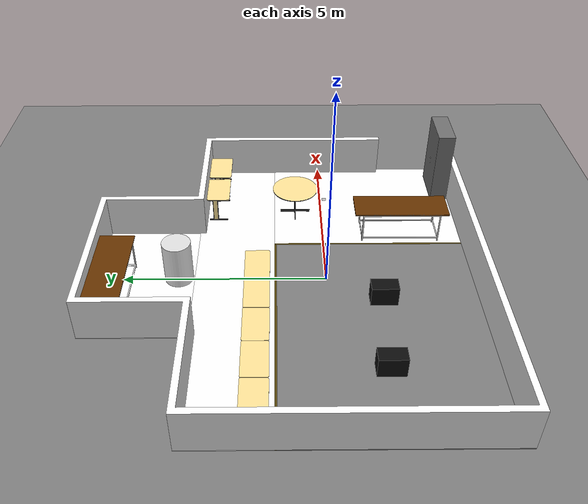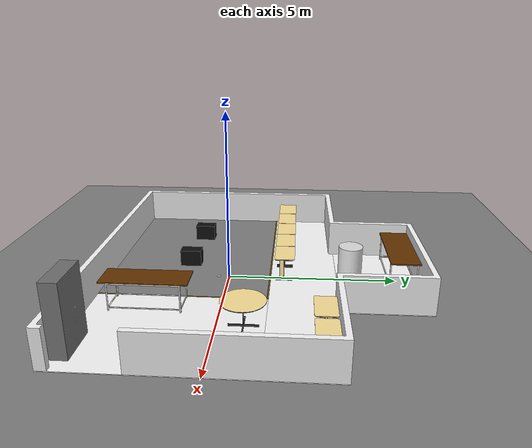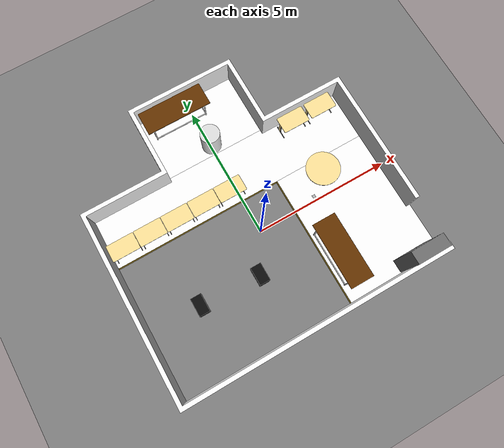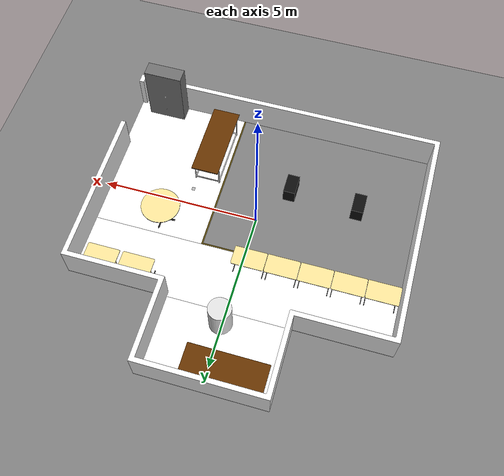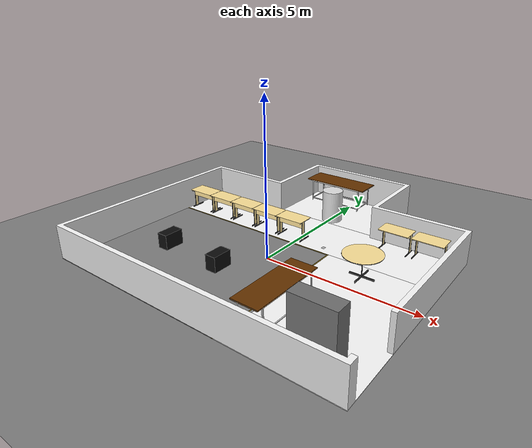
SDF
<sdf version="1.6">
 <world name="default">
  <plugin filename="ignition-gazebo-collada-world-exporter-system" name="ignition::gazebo::systems::ColladaWorldExporter"/>
  <plugin filename="libignition-gazebo-physics-system.so" name="ignition::gazebo::systems::Physics"/>
  <plugin filename="libignition-gazebo-user-commands-system.so" name="ignition::gazebo::systems::UserCommands"/>
  <plugin filename="libignition-gazebo-scene-broadcaster-system.so" name="ignition::gazebo::systems::SceneBroadcaster"/>
  <plugin filename="libignition-gazebo-sensors-system.so" name="ignition::gazebo::systems::Sensors">
   <render_engine>ogre2</render_engine>
  </plugin>
  <plugin filename="libignition-gazebo-imu-system.so" name="ignition::gazebo::systems::Imu"/>
  <plugin filename="libignition-gazebo-navsat-system.so" name="ignition::gazebo::systems::NavSat"/>
  <include>
   <uri>model://Apriltag36_11_00000</uri>
   <name>apriltag_0</name>
   <pose>2.0 0.0 1.0 0.0 0.0 1.5708</pose>
  </include>
  <gravity>0 0 -9.8</gravity>
  <magnetic_field>6e-06 2.3e-05 -4.2e-05</magnetic_field>
  <atmosphere type="adiabatic"/>
  <physics name="default_physics" default="true" type="ode">
   <max_step_size>0.01</max_step_size>
   <real_time_factor>1.0</real_time_factor>
   <real_time_update_rate>100</real_time_update_rate>
  </physics>
  <scene><ambient>0.4 0.4 0.4 1</ambient><background>0.7 0.7 0.7 1</background><shadows>false</shadows></scene>
  <spherical_coordinates>
   <surface_model>EARTH_WGS84</surface_model>
   <latitude_deg>-12.99946</latitude_deg>
   <longitude_deg>-38.50994</longitude_deg>
   <elevation>0</elevation>
   <heading_deg>0</heading_deg>
  </spherical_coordinates>
  <light name="sun" type="directional">
   <cast_shadows>false</cast_shadows>
   <pose>0 0 10 0 0 0</pose>
   <diffuse>0.8 0.8 0.8 1</diffuse>
   <specular>0.1 0.1 0.1 1</specular>
   <attenuation>
    <range>1000</range>
    <constant>0.9</constant>
    <linear>0.01</linear>
    <quadratic>0.001</quadratic>
   </attenuation>
   <direction>-0.5 0.5 -1</direction>
  </light>
  <model name="ground_plane">
   <static>true</static>
   <link name="link">
    <collision name="collision">
     <geometry><plane><normal>0 0 1</normal><size>100 100</size></plane></geometry>
     <surface><friction><ode><mu>100</mu><mu2>50</mu2></ode></friction></surface>
    </collision>
    <visual name="visual">
     <cast_shadows>false</cast_shadows>
     <geometry><plane><normal>0 0 1</normal><size>100 100</size></plane></geometry>
     <material>
      <ambient>0.5 0.5 0.5 1</ambient>
      <diffuse>0.5 0.5 0.5 1</diffuse>
      <specular>0.1 0.1 0.1 1</specular>
     </material>
    </visual>
   </link>
  </model>
  <include>
   <uri>model://lar_floor</uri>
   <name>floor</name>
   <static>true</static>
   <pose>0 -0.25 0 0 0 0</pose>
  </include>
  <include><uri>model://lar_walls</uri><name>walls</name><static>true</static><pose>0 1 0 0 0 0</pose></include>
  <include>
   <uri>model://lar_shelf</uri>
   <name>shelf</name>
   <static>true</static>
   <pose>4.0 -3.35 0 0 0 1.57068</pose>
  </include>
  <include>
   <uri>model://lar_table_great</uri>
   <name>great_table_0</name>
   <static>true</static>
   <pose>1.9 -2.0 0 0 0 0</pose>
  </include>
  <include>
   <uri>model://lar_table_great</uri>
   <name>great_table_1</name>
   <static>true</static>
   <pose>-0.55 5.15 0 0 0 1.5708</pose>
  </include>
  <include>
   <uri>model://lar_table_pc</uri>
   <name>pc_table_0</name>
   <static>true</static>
   <pose>-4.30 1.68 0 0 0 0</pose>
  </include>
  <include>
   <uri>model://lar_table_pc</uri>
   <name>pc_table_1</name>
   <static>true</static>
   <pose>-3.29 1.68 0 0 0 0</pose>
  </include>
  <include>
   <uri>model://lar_table_pc</uri>
   <name>pc_table_2</name>
   <static>true</static>
   <pose>-2.28 1.68 0 0 0 0</pose>
  </include>
  <include>
   <uri>model://lar_table_pc</uri>
   <name>pc_table_3</name>
   <static>true</static>
   <pose>-1.27 1.68 0 0 0 0</pose>
  </include>
  <include>
   <uri>model://lar_table_pc</uri>
   <name>pc_table_4</name>
   <static>true</static>
   <pose>-0.26 1.68 0 0 0 0</pose>
  </include>
  <include>
   <uri>model://lar_table_pc</uri>
   <name>pc_table_5</name>
   <static>true</static>
   <pose>4 2.8 0 0 0 -3.14159</pose>
  </include>
  <include>
   <uri>model://lar_table_pc</uri>
   <name>pc_table_6</name>
   <static>true</static>
   <pose>2.9 2.8 0 0 0 3.14159</pose>
  </include>
  <include>
   <uri>model://lar_table_circular</uri>
   <name>circular_table</name>
   <static>true</static>
   <pose>2.84873 0.721151 0 0 0 0</pose>
  </include>
  <include>
   <uri>model://box</uri>
   <name>box_0</name>
   <static>true</static>
   <pose>-0.80 -1.3 0 0 0 1.5708</pose>
  </include>
  <include>
   <uri>model://box</uri>
   <name>box_1</name>
   <static>true</static>
   <pose>-3.0 -1.2 0 0 0 1.5708</pose>
  </include>
 </world>
</sdf>

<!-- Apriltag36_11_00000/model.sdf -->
<sdf version='1.6'>
  <model name='Apriltag36_11_00000'>
    <link name="link">
      <inertial>
        <pose>0 0 0 0 0 0</pose>
        <mass>0.5</mass>
        <inertia>
          <ixx>0.0001</ixx>
          <ixy>0</ixy>
          <ixz>0</ixz>
          <iyy>0.0001</iyy>
          <iyz>0</iyz>
          <izz>0.0001</izz>
        </inertia>
      </inertial>
      <collision name="collision">
        <pose>0 0 0 0 0 0</pose>
        <geometry>
          <mesh>
            <uri>model://Apriltag36_11_00000/meshes/tag36_11_00000.dae</uri>
          </mesh>
        </geometry>
        <surface>
          <friction>
            <ode>
              <mu>1.0</mu>
              <mu2>1.0</mu2>
            </ode>
          </friction>
          <contact>
            <ode>
              <kp>10000000.0</kp>
              <kd>1.0</kd>
              <min_depth>0.001</min_depth>
              <max_vel>0.1</max_vel>
            </ode>
          </contact>
        </surface>
      </collision>
      <visual name="visual">
        <pose>0 0 0 0 0 0</pose>
        <geometry>
          <mesh>
            <uri>model://Apriltag36_11_00000/meshes/tag36_11_00000.dae</uri>
          </mesh>
        </geometry>
      </visual>
    </link>
  </model>
</sdf>

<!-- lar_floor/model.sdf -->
<sdf version="1.6">
  <model name="lar_floor">
    <link name='floor'>
      <pose>0 0 0 0 0 0</pose>
      <gravity>1</gravity>
      <self_collide>0</self_collide>
      <kinematic>0</kinematic>

      <visual name='visual_1'>
        <pose>3.2 -0.985 0.01 0 0 0</pose>
        <geometry>
          <box>
            <size>3.6 5.03 0.02</size>
          </box>
        </geometry>
        <material>
          <ambient>1 1 1 1</ambient>
          <diffuse>1 1 1 1</diffuse>
          <specular>0.05 0.05 0.05 1</specular>
          <pbr>
            <metal>
              <albedo_map>model://lar_floor/materials/textures/ceramic_floor.png</albedo_map>
              <metalness>0.0</metalness>
              <roughness>0.95</roughness>
            </metal>
          </pbr>
        </material>
        <cast_shadows>0</cast_shadows>
        <transparency>0</transparency>
      </visual>

      <visual name='visual_2'>
        <pose>0 4.75 0.01 0 0 0</pose>
        <geometry>
          <box>
            <size>4 2.5 0.02</size>
          </box>
        </geometry>
        <material>
          <ambient>1 1 1 1</ambient>
          <diffuse>1 1 1 1</diffuse>
          <specular>0.05 0.05 0.05 1</specular>
          <pbr>
            <metal>
              <albedo_map>model://lar_floor/materials/textures/ceramic_floor.png</albedo_map>
              <metalness>0.0</metalness>
              <roughness>0.95</roughness>
            </metal>
          </pbr>
        </material>
        <cast_shadows>0</cast_shadows>
        <transparency>0</transparency>
      </visual>

      <visual name='visual_3'>
        <pose>-1.825 -1.01 0.01 0 0 0</pose>
        <geometry>
          <box>
            <size>6.35 4.98 0.02</size>
          </box>
        </geometry>
        <material>
          <ambient>0.5 0.5 0.5 1</ambient>
          <diffuse>0.5 0.5 0.5 1</diffuse>
          <specular>0.05 0.05 0.05 1</specular>
        </material>
        <cast_shadows>0</cast_shadows>
        <transparency>0</transparency>
      </visual>

      <visual name='visual_4'>
        <pose>1.375 -0.985 0.01 0 0 0</pose>
        <geometry>
          <box>
            <size>0.05 5.03 0.02</size>
          </box>
        </geometry>
        <material>
          <ambient>0.35 0.28 0.05 1</ambient>
          <diffuse>0.35 0.28 0.05 1</diffuse>
          <specular>0.05 0.05 0.05 1</specular>
        </material>
        <cast_shadows>0</cast_shadows>
        <transparency>0</transparency>
      </visual>

      <visual name='visual_5'>
        <pose>-1.825 1.505 0.01 0 0 0</pose>
        <geometry>
          <box>
            <size>6.35 0.05 0.02</size>
          </box>
        </geometry>
        <material>
          <ambient>0.35 0.28 0.05 1</ambient>
          <diffuse>0.35 0.28 0.05 1</diffuse>
          <specular>0.05 0.05 0.05 1</specular>
        </material>
        <cast_shadows>0</cast_shadows>
        <transparency>0</transparency>
      </visual>

      <visual name='visual_6'>
        <pose>0 2.515 0.01 0 0 0</pose>
        <geometry>
          <box>
            <size>10 1.97 0.02</size>
          </box>
        </geometry>
        <material>
          <ambient>1 1 1 1</ambient>
          <diffuse>1 1 1 1</diffuse>
          <specular>0.05 0.05 0.05 1</specular>
          <pbr>
            <metal>
              <albedo_map>model://lar_floor/materials/textures/ceramic_floor.png</albedo_map>
              <metalness>0.0</metalness>
              <roughness>0.95</roughness>
            </metal>
          </pbr>
        </material>
        <cast_shadows>0</cast_shadows>
        <transparency>0</transparency>
      </visual>

      <collision name='collision_1'>
        <max_contacts>10</max_contacts>
        <pose>0 0 0.01 0 0 0</pose>
        <geometry>
          <box>
            <size>10 7.0 0.1</size>
          </box>
        </geometry>
        <surface>
          <friction><ode/></friction>
          <bounce/>
          <contact><ode/></contact>
        </surface>
      </collision>

      <collision name='collision_2'>
        <max_contacts>10</max_contacts>
        <pose>0 4.75 0.01 0 0 0</pose>
        <geometry>
          <box>
            <size>4 2.5 0.1</size>
          </box>
        </geometry>
        <surface>
          <friction><ode/></friction>
          <bounce/>
          <contact><ode/></contact>
        </surface>
      </collision>
    </link>
    <static>1</static>
    <allow_auto_disable>1</allow_auto_disable>
  </model>
</sdf>

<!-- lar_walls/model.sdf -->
<sdf version='1.6'>
  <model name='lar_walls'>
    <static>true</static>
    <allow_auto_disable>true</allow_auto_disable>
    <link name='walls'>
      <pose>0 0 1.52 0 -0 0</pose>
      <gravity>false</gravity>
      <self_collide>false</self_collide>
      <kinematic>false</kinematic>

      <visual name='visual'>
        <pose>0 0 0 0 0 0</pose>
        <cast_shadows>false</cast_shadows>
        <transparency>0</transparency>
        <geometry>
          <mesh>
            <uri>model://lar_walls/meshes/lar_walls.dae</uri>
            <scale>1 1 1</scale>
          </mesh>
        </geometry>
      </visual>

      <collision name='wall_bottom'>
        <pose>4.873 -0.071 0.531 0 0 0</pose>
        <max_contacts>10</max_contacts>
        <geometry>
          <box>
            <size>10 0.1 1.1</size>
          </box>
        </geometry>
        <surface>
          <friction>
            <ode>
              <mu>1.0</mu>
              <mu2>1.0</mu2>
            </ode>
          </friction>
          <contact>
            <ode>
              <kp>1000000.0</kp>
              <kd>10.0</kd>
              <max_vel>0.01</max_vel>
              <min_depth>0.001</min_depth>
            </ode>
          </contact>
        </surface>
      </collision>

      <collision name='wall_right_low'>
        <pose>9.823 3.379 0.531 0 0 0</pose>
        <max_contacts>10</max_contacts>
        <geometry>
          <box>
            <size>0.1 7 1.1</size>
          </box>
        </geometry>
        <surface>
          <friction>
            <ode>
              <mu>1.0</mu>
              <mu2>1.0</mu2>
            </ode>
          </friction>
          <contact>
            <ode>
              <kp>1000000.0</kp>
              <kd>10.0</kd>
              <max_vel>0.01</max_vel>
              <min_depth>0.001</min_depth>
            </ode>
          </contact>
        </surface>
      </collision>

      <collision name='wall_step_r'>
        <pose>8.373 6.829 0.531 0 0 0</pose>
        <max_contacts>10</max_contacts>
        <geometry>
          <box>
            <size>3 0.1 1.1</size>
          </box>
        </geometry>
        <surface>
          <friction>
            <ode>
              <mu>1.0</mu>
              <mu2>1.0</mu2>
            </ode>
          </friction>
          <contact>
            <ode>
              <kp>1000000.0</kp>
              <kd>10.0</kd>
              <max_vel>0.01</max_vel>
              <min_depth>0.001</min_depth>
            </ode>
          </contact>
        </surface>
      </collision>

      <collision name='wall_right_up'>
        <pose>6.823 8.129 0.531 0 0 0</pose>
        <max_contacts>10</max_contacts>
        <geometry>
          <box>
            <size>0.1 2.5 1.1</size>
          </box>
        </geometry>
        <surface>
          <friction>
            <ode>
              <mu>1.0</mu>
              <mu2>1.0</mu2>
            </ode>
          </friction>
          <contact>
            <ode>
              <kp>1000000.0</kp>
              <kd>10.0</kd>
              <max_vel>0.01</max_vel>
              <min_depth>0.001</min_depth>
            </ode>
          </contact>
        </surface>
      </collision>

      <collision name='wall_top'>
        <pose>4.873 9.329 0.531 0 0 0</pose>
        <max_contacts>10</max_contacts>
        <geometry>
          <box>
            <size>4 0.1 1.1</size>
          </box>
        </geometry>
        <surface>
          <friction>
            <ode>
              <mu>1.0</mu>
              <mu2>1.0</mu2>
            </ode>
          </friction>
          <contact>
            <ode>
              <kp>1000000.0</kp>
              <kd>10.0</kd>
              <max_vel>0.01</max_vel>
              <min_depth>0.001</min_depth>
            </ode>
          </contact>
        </surface>
      </collision>

      <collision name='wall_left_up'>
        <pose>2.923 8.129 0.531 0 0 0</pose>
        <max_contacts>10</max_contacts>
        <geometry>
          <box>
            <size>0.1 2.5 1.1</size>
          </box>
        </geometry>
        <surface>
          <friction>
            <ode>
              <mu>1.0</mu>
              <mu2>1.0</mu2>
            </ode>
          </friction>
          <contact>
            <ode>
              <kp>1000000.0</kp>
              <kd>10.0</kd>
              <max_vel>0.01</max_vel>
              <min_depth>0.001</min_depth>
            </ode>
          </contact>
        </surface>
      </collision>

      <collision name='wall_step_l'>
        <pose>1.373 6.829 0.531 0 0 0</pose>
        <max_contacts>10</max_contacts>
        <geometry>
          <box>
            <size>3 0.1 1.1</size>
          </box>
        </geometry>
        <surface>
          <friction>
            <ode>
              <mu>1.0</mu>
              <mu2>1.0</mu2>
            </ode>
          </friction>
          <contact>
            <ode>
              <kp>1000000.0</kp>
              <kd>10.0</kd>
              <max_vel>0.01</max_vel>
              <min_depth>0.001</min_depth>
            </ode>
          </contact>
        </surface>
      </collision>

      <collision name='wall_left_low'>
        <pose>-0.077 3.379 0.531 0 0 0</pose>
        <max_contacts>10</max_contacts>
        <geometry>
          <box>
            <size>0.1 7 1.1</size>
          </box>
        </geometry>
        <surface>
          <friction>
            <ode>
              <mu>1.0</mu>
              <mu2>1.0</mu2>
            </ode>
          </friction>
          <contact>
            <ode>
              <kp>1000000.0</kp>
              <kd>10.0</kd>
              <max_vel>0.01</max_vel>
              <min_depth>0.001</min_depth>
            </ode>
          </contact>
        </surface>
      </collision>

      <collision name='wall_pillar'>
        <pose>4.923 7.254 0.531 0 0 0</pose>
        <max_contacts>10</max_contacts>
        <geometry>
          <box>
            <size>0.7 0.7 1.1</size>
          </box>
        </geometry>
        <surface>
          <friction>
            <ode>
              <mu>1.0</mu>
              <mu2>1.0</mu2>
            </ode>
          </friction>
          <contact>
            <ode>
              <kp>1000000.0</kp>
              <kd>10.0</kd>
              <max_vel>0.01</max_vel>
              <min_depth>0.001</min_depth>
            </ode>
          </contact>
        </surface>
      </collision>
    </link>
  </model>
</sdf>

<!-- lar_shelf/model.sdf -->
<sdf version='1.6'>
  <model name='lar_shelf'>
    <static>true</static>
    <allow_auto_disable>true</allow_auto_disable>
    <link name='shelf'>
      <pose>0 0 1.01 0 -0 0</pose>
      <gravity>false</gravity>
      <self_collide>false</self_collide>
      <kinematic>false</kinematic>

      <visual name='visual'>
        <pose>0 0 0 0 0 0</pose>
        <cast_shadows>false</cast_shadows>
        <transparency>0</transparency>
        <geometry>
          <mesh>
            <uri>model://lar_shelf/meshes/lar_shelf.dae</uri>
            <scale>1 1 1</scale>
          </mesh>
        </geometry>
      </visual>

      <collision name='collision_main'>
        <pose>0.018586 0 0 0 0 0</pose>
        <max_contacts>10</max_contacts>
        <geometry>
          <box>
            <size>0.487173 1.2 1.98</size>
          </box>
        </geometry>
        <surface>
          <friction>
            <ode>
              <mu>1.0</mu>
              <mu2>1.0</mu2>
            </ode>
          </friction>
          <contact>
            <ode>
              <kp>1000000.0</kp>
              <kd>10.0</kd>
              <max_vel>0.01</max_vel>
              <min_depth>0.001</min_depth>
            </ode>
          </contact>
        </surface>
      </collision>
    </link>
  </model>
</sdf>

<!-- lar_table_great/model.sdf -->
<sdf version='1.6'>
  <model name='lar_table_great'>
    <static>true</static>
    <allow_auto_disable>true</allow_auto_disable>
    <link name='great_table'>
      <pose>0 0 0.445 0 -0 0</pose>
      <gravity>false</gravity>
      <self_collide>false</self_collide>
      <kinematic>false</kinematic>

      <visual name='visual'>
        <pose>0 0 0 0 0 0</pose>
        <cast_shadows>false</cast_shadows>
        <transparency>0</transparency>
        <geometry>
          <mesh>
            <uri>model://lar_table_great/meshes/lar_table_great.dae</uri>
            <scale>1 1 1</scale>
          </mesh>
        </geometry>
      </visual>

      <collision name='collision_main'>
        <pose>-0.178665 0.384243 0.377539 0 0 0</pose>
        <max_contacts>10</max_contacts>
        <geometry>
          <box>
            <size>1.230415 3.18072 0.843334</size>
          </box>
        </geometry>
        <surface>
          <friction>
            <ode>
              <mu>1.0</mu>
              <mu2>1.0</mu2>
            </ode>
          </friction>
          <contact>
            <ode>
              <kp>1000000.0</kp>
              <kd>10.0</kd>
              <max_vel>0.01</max_vel>
              <min_depth>0.001</min_depth>
            </ode>
          </contact>
        </surface>
      </collision>
    </link>
  </model>
</sdf>

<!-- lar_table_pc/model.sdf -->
<sdf version='1.6'>
  <model name='lar_table_pc'>
    <static>true</static>
    <allow_auto_disable>true</allow_auto_disable>
    <link name='pc_table'>
      <pose>0 0 0.370 0 -0 0</pose>
      <gravity>false</gravity>
      <self_collide>false</self_collide>
      <kinematic>false</kinematic>

      <visual name='visual'>
        <pose>0 0 0 0 0 0</pose>
        <cast_shadows>false</cast_shadows>
        <transparency>0</transparency>
        <geometry>
          <mesh>
            <uri>model://lar_table_pc/meshes/lar_table_pc.dae</uri>
            <scale>1 1 1</scale>
          </mesh>
        </geometry>
      </visual>

      <collision name='collision_main'>
        <pose>0 -0.091825 0.180555 0 0 0</pose>
        <max_contacts>10</max_contacts>
        <geometry>
          <box>
            <size>1 0.80365 0.98111</size>
          </box>
        </geometry>
        <surface>
          <friction>
            <ode>
              <mu>1.0</mu>
              <mu2>1.0</mu2>
            </ode>
          </friction>
          <contact>
            <ode>
              <kp>1000000.0</kp>
              <kd>10.0</kd>
              <max_vel>0.01</max_vel>
              <min_depth>0.001</min_depth>
            </ode>
          </contact>
        </surface>
      </collision>
    </link>
  </model>
</sdf>

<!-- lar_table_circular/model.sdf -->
<sdf version='1.6'>
  <model name='lar_table_circular'>
    <static>true</static>
    <allow_auto_disable>true</allow_auto_disable>
    <link name='circular_table'>
      <pose>0 0 0.388 0 -0 0</pose>
      <gravity>false</gravity>
      <self_collide>false</self_collide>
      <kinematic>false</kinematic>

      <visual name='visual'>
        <pose>0 0 0 0 0 0</pose>
        <cast_shadows>false</cast_shadows>
        <transparency>0</transparency>
        <geometry>
          <mesh>
            <uri>model://lar_table_circular/meshes/lar_table_circular.dae</uri>
            <scale>1 1 1</scale>
          </mesh>
        </geometry>
      </visual>

      <collision name='collision_main'>
        <pose>-0 -0 0.009826 0 0 0</pose>
        <max_contacts>10</max_contacts>
        <geometry>
          <box>
            <size>1.2 1.2 0.75</size>
          </box>
        </geometry>
        <surface>
          <friction>
            <ode>
              <mu>1.0</mu>
              <mu2>1.0</mu2>
            </ode>
          </friction>
          <contact>
            <ode>
              <kp>1000000.0</kp>
              <kd>10.0</kd>
              <max_vel>0.01</max_vel>
              <min_depth>0.001</min_depth>
            </ode>
          </contact>
        </surface>
      </collision>
    </link>
  </model>
</sdf>

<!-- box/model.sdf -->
<sdf version="1.6">
  <model name="box">
    <static>true</static>
    <allow_auto_disable>true</allow_auto_disable>
    <link name="link">
      <pose>0 0 0.28 0 0 0</pose>
      <collision name="collision">
        <geometry>
          <box>
            <size>0.65 0.38 0.5</size>
          </box>
        </geometry>
      </collision>
      <visual name="visual">
        <cast_shadows>false</cast_shadows>
        <geometry>
          <box>
            <size>0.65 0.38 0.5</size>
          </box>
        </geometry>
        <material>
          <ambient>0.02 0.02 0.02 1</ambient>
          <diffuse>0.05 0.05 0.05 1</diffuse>
          <specular>0.1 0.1 0.1 1</specular>
        </material>
      </visual>
    </link>
  </model>
</sdf>
